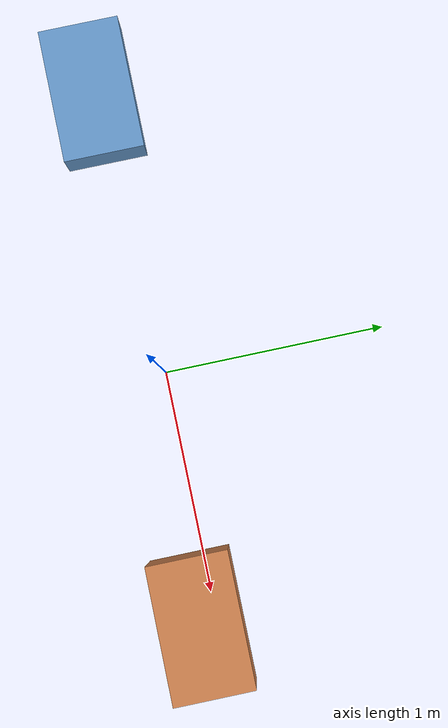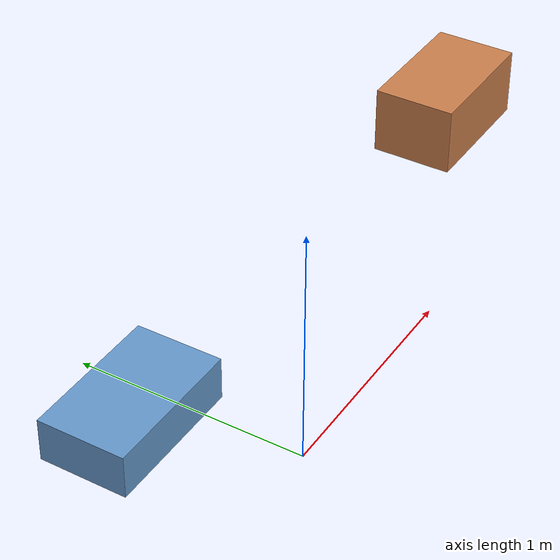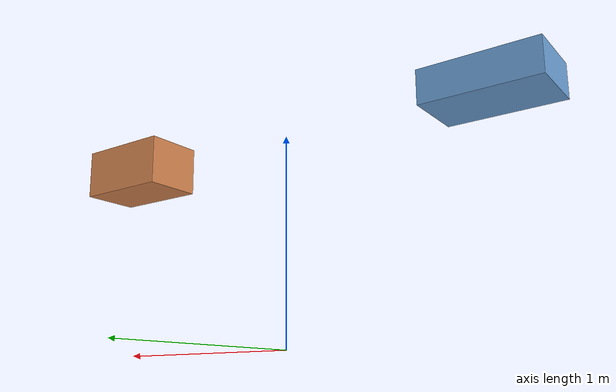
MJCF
<mujoco model="inertia_comparison">
  <compiler angle="radian"/>
  <option gravity="0 0 0" timestep="0.002"/>

  <worldbody>
    <body name="diag" pos="-1 0 1">
      <freejoint name="free_diag"/>
      <inertial pos="0 0 0" mass="2.0" diaginertia="0.1 0.2 0.3"/>
      <geom name="diag_box" type="box" size="0.25 0.15 0.075"
            rgba="0.4 0.6 0.8 1"/>
    </body>
    <body name="full" pos="1 0 1">
      <freejoint name="free_full"/>
      <inertial pos="0 0 0" mass="2.0" fullinertia="0.1 0.2 0.3 0.02 0.01 0.03"/>
      <geom name="full_box" type="box" size="0.25 0.15 0.125"
            rgba="0.8 0.5 0.3 1"/>
    </body>
  </worldbody>
</mujoco>
